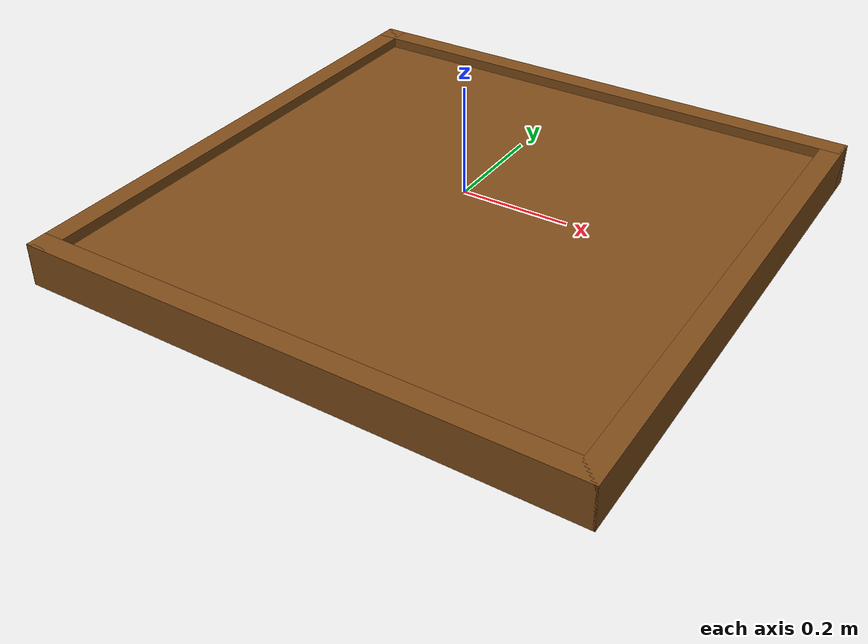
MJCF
<mujoco>
  <worldbody>
    <!-- Adjusting the table -->
    <body name="table" pos="0 0 -0.04">
        <geom type="box" name="table_top" pos="0 0 0" size="0.5 0.5 0.02" rgba="0.5 0.3 0.1 1"/>
        <geom type="box" name="table_border1" pos="0.5 0 0" size="0.02 0.52 0.04" rgba="0.5 0.3 0.1 1"/>
        <geom type="box" name="table_border2" pos="-0.5 0 0" size="0.02 0.52 0.04" rgba="0.5 0.3 0.1 1"/>
        <geom type="box" name="table_border3" pos="0 0.5 0" size="0.52 0.02 0.04" rgba="0.5 0.3 0.1 1"/>
        <geom type="box" name="table_border4" pos="0 -0.5 0" size="0.52 0.02 0.04" rgba="0.5 0.3 0.1 1"/>
    </body>
  </worldbody>
</mujoco>
